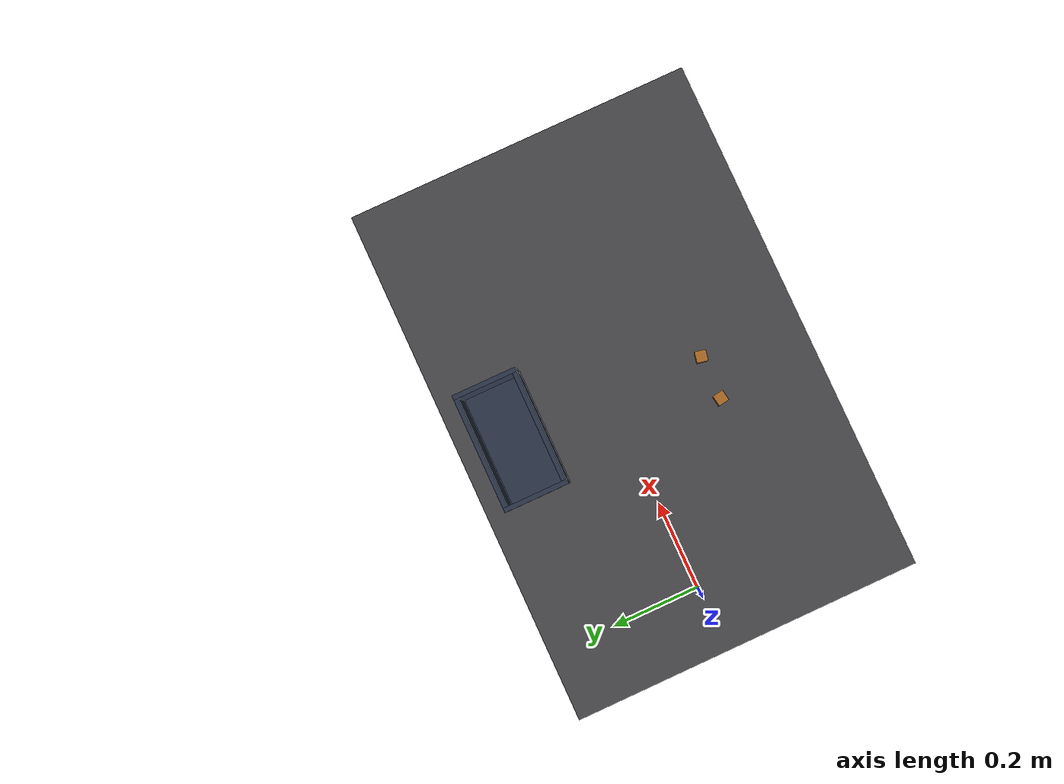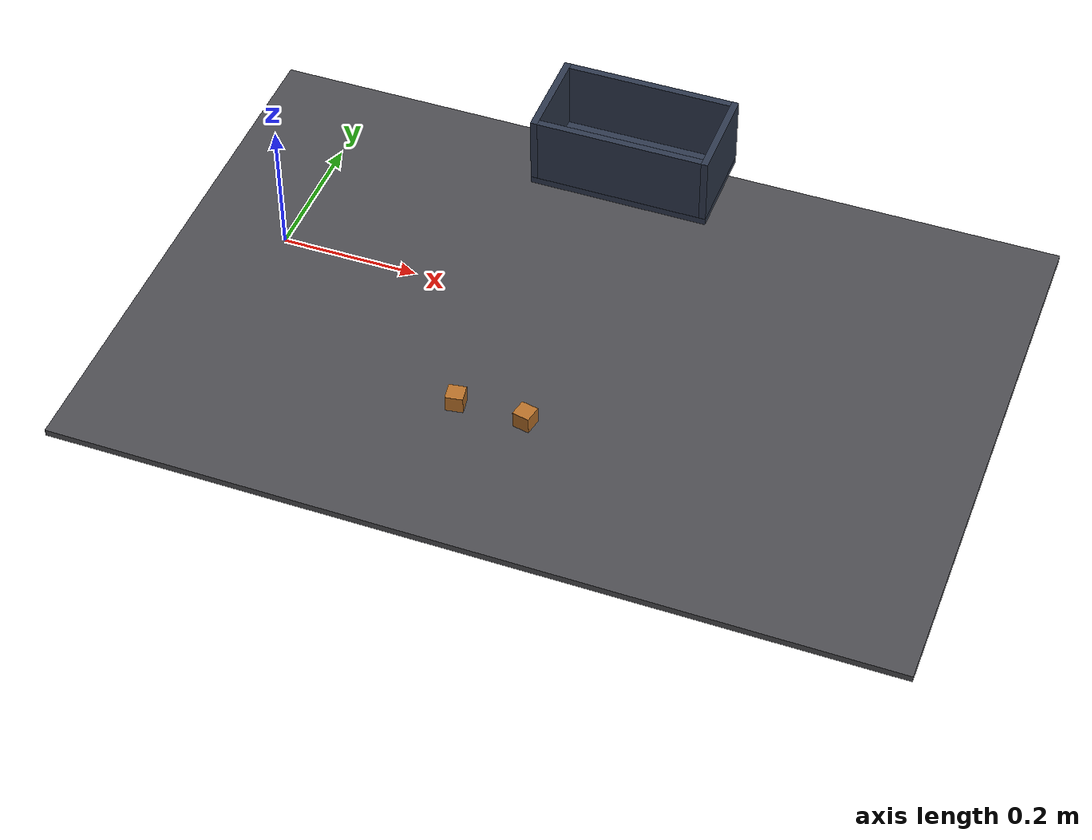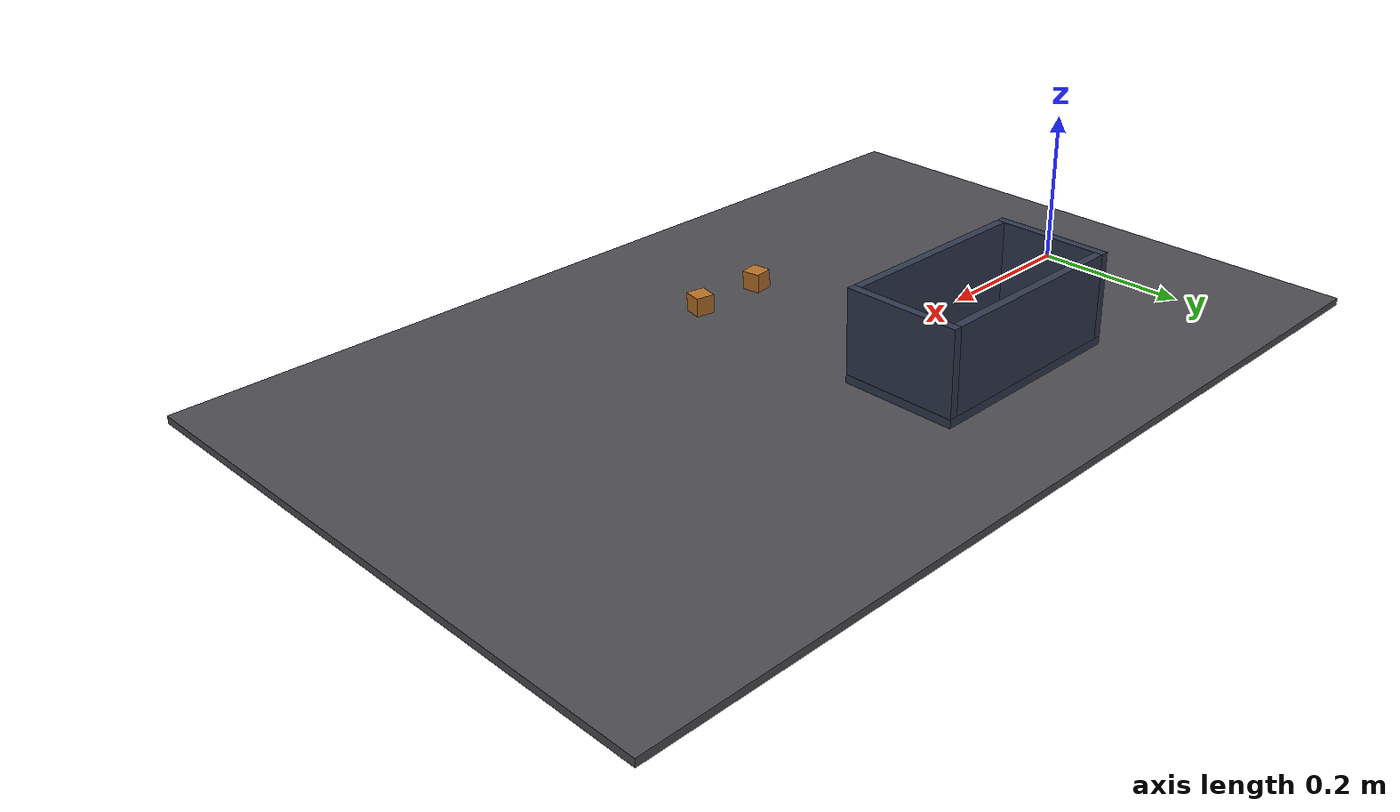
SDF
<?xml version='1.0' encoding='utf-8'?>
<sdf version="1.8">
  <world name="a0">
    <plugin filename="/tmp/stage_a2_owner_build/libworkcell_owner_physics.so" name="ignition::gazebo::systems::WorkcellOwnerPhysics"><owner_output>/tmp/stage_a2_ode_numeric_runtime/instrumented/owner.jsonl</owner_output><owner_session>d15a301b-1524-47db-a7f8-a9562cc195e4</owner_session><owner_record_steps>100 250 500 1000 1500 2000</owner_record_steps></plugin>
    <plugin filename="ignition-gazebo-user-commands-system" name="ignition::gazebo::systems::UserCommands" />
    <plugin filename="ignition-gazebo-scene-broadcaster-system" name="ignition::gazebo::systems::SceneBroadcaster" />

    <gravity>0 0 -9.81</gravity>
    <physics name="default_physics" type="ode">
      <max_step_size>0.001</max_step_size>
      <real_time_factor>1.0</real_time_factor>
      <real_time_update_rate>1000</real_time_update_rate>
    </physics>

    <scene>
      <ambient>0.6 0.6 0.6 1</ambient>
      <background>0.12 0.12 0.14 1</background>
      <shadows>false</shadows>
    </scene>

    <light name="sun" type="directional">
      <pose>0 0 3 0 0 0</pose>
      <cast_shadows>false</cast_shadows>
      <diffuse>0.8 0.8 0.8 1</diffuse>
      <specular>0.2 0.2 0.2 1</specular>
      <direction>-0.5 0.1 -1</direction>
    </light>

    <model name="pick_support">
      <static>true</static>
      <link name="support_link">
        <collision name="support_collision">
          <geometry>
            <plane>
              <normal>0 0 1</normal>
              <size>2 2</size>
            </plane>
          </geometry>
          <surface>
            <friction>
              <ode><mu>0.8</mu><mu2>0.8</mu2></ode>
            </friction>
          </surface>
        </collision>
        <visual name="support_visual">
          <geometry>
            <box><size>1.2 0.8 0.01</size></box>
          </geometry>
          <pose>0.45 -0.05 -0.005 0 0 0</pose>
          <material>
            <ambient>0.25 0.25 0.27 1</ambient>
            <diffuse>0.3 0.3 0.32 1</diffuse>
          </material>
        </visual>
      </link>
    </model>

    <model name="target_bin_physics">
      <static>true</static>
      <link name="bin_link">
        <collision name="floor">
          <pose>0.45 0.22 0.09 0 0 0</pose>
          <geometry><box><size>0.26 0.14 0.01</size></box></geometry>
          <surface><friction><ode><mu>0.7</mu><mu2>0.7</mu2></ode></friction></surface>
        </collision>
        <collision name="wall_x_minus">
          <pose>0.325 0.22 0.145 0 0 0</pose>
          <geometry><box><size>0.01 0.14 0.10</size></box></geometry>
        </collision>
        <collision name="wall_x_plus">
          <pose>0.575 0.22 0.145 0 0 0</pose>
          <geometry><box><size>0.01 0.14 0.10</size></box></geometry>
        </collision>
        <collision name="wall_y_minus">
          <pose>0.45 0.155 0.145 0 0 0</pose>
          <geometry><box><size>0.24 0.01 0.10</size></box></geometry>
        </collision>
        <collision name="wall_y_plus">
          <pose>0.45 0.285 0.145 0 0 0</pose>
          <geometry><box><size>0.24 0.01 0.10</size></box></geometry>
        </collision>
        <visual name="bin_floor_visual">
          <pose>0.45 0.22 0.09 0 0 0</pose>
          <geometry><box><size>0.26 0.14 0.01</size></box></geometry>
          <material><diffuse>0.18 0.22 0.30 1</diffuse></material>
        </visual>
        <visual name="wall_x_minus_visual">
          <pose>0.325 0.22 0.145 0 0 0</pose>
          <geometry><box><size>0.01 0.14 0.10</size></box></geometry>
          <material><diffuse>0.18 0.22 0.30 1</diffuse></material>
        </visual>
        <visual name="wall_x_plus_visual">
          <pose>0.575 0.22 0.145 0 0 0</pose>
          <geometry><box><size>0.01 0.14 0.10</size></box></geometry>
          <material><diffuse>0.18 0.22 0.30 1</diffuse></material>
        </visual>
        <visual name="wall_y_minus_visual">
          <pose>0.45 0.155 0.145 0 0 0</pose>
          <geometry><box><size>0.24 0.01 0.10</size></box></geometry>
          <material><diffuse>0.18 0.22 0.30 1</diffuse></material>
        </visual>
        <visual name="wall_y_plus_visual">
          <pose>0.45 0.285 0.145 0 0 0</pose>
          <geometry><box><size>0.24 0.01 0.10</size></box></geometry>
          <material><diffuse>0.18 0.22 0.30 1</diffuse></material>
        </visual>
      </link>
    </model>

    <model name="part_00">
      <pose>0.35 -0.217 0.0125 0 0 0.15</pose>
      <link name="link">
        <inertial><mass>0.020</mass><inertia><ixx>2.083333333e-6</ixx><iyy>2.083333333e-6</iyy><izz>2.083333333e-6</izz><ixy>0</ixy><ixz>0</ixz><iyz>0</iyz></inertia></inertial>
        <collision name="collision"><geometry><box><size>0.025 0.025 0.025</size></box></geometry><surface><friction><ode><mu>0.65</mu><mu2>0.65</mu2></ode></friction><contact><ode><kp>100000</kp><kd>1</kd><max_vel>0.05</max_vel><min_depth>0.0001</min_depth></ode></contact></surface></collision>
        <visual name="visual"><geometry><box><size>0.025 0.025 0.025</size></box></geometry><material><diffuse>0.72 0.44 0.16 1</diffuse></material></visual>
      </link>
    </model>
    <model name="part_01">
      <pose>0.45 -0.217 0.0125 0 0 -0.2</pose>
      <link name="link">
        <inertial><mass>0.020</mass><inertia><ixx>2.083333333e-6</ixx><iyy>2.083333333e-6</iyy><izz>2.083333333e-6</izz><ixy>0</ixy><ixz>0</ixz><iyz>0</iyz></inertia></inertial>
        <collision name="collision"><geometry><box><size>0.025 0.025 0.025</size></box></geometry><surface><friction><ode><mu>0.65</mu><mu2>0.65</mu2></ode></friction><contact><ode><kp>100000</kp><kd>1</kd><max_vel>0.05</max_vel><min_depth>0.0001</min_depth></ode></contact></surface></collision>
        <visual name="visual"><geometry><box><size>0.025 0.025 0.025</size></box></geometry><material><diffuse>0.72 0.44 0.16 1</diffuse></material></visual>
      </link>
    </model>
    <plugin filename="ignition-gazebo-sensors-system" name="ignition::gazebo::systems::Sensors"><render_engine>ogre</render_engine></plugin><model name="stage_a_camera"><static>true</static><pose>0.4 -0.217 0.614 0.0 1.5707963267948966 0.0</pose>
      <link name="camera_link"><sensor name="rgbd" type="rgbd_camera">
        <always_on>true</always_on><update_rate>2</update_rate><topic>/stage_a/camera</topic>
        <camera><optical_frame_id>stage_a_camera_optical_frame</optical_frame_id>
          <horizontal_fov>1.047</horizontal_fov>
          <image><width>512</width><height>512</height><format>R8G8B8</format></image>
          <clip><near>0.02</near><far>5</far></clip>
        </camera>
      </sensor></link></model><plugin filename="/tmp/stage_a2_physics_contact_build/libworkcell_physics_contact_measurement.so" name="WorkcellPhysicsContactMeasurement"><support_collision>a0::pick_support::support_link::support_collision</support_collision><workpieces>part_00 part_01</workpieces><run_id>d15a301b-1524-47db-a7f8-a9562cc195e4</run_id><diagnostic_output>/tmp/stage_a2_ode_numeric_runtime/instrumented/ecm.jsonl</diagnostic_output><diagnostic_steps>100 250 500 1000 1500 2000</diagnostic_steps></plugin></world>
</sdf>
